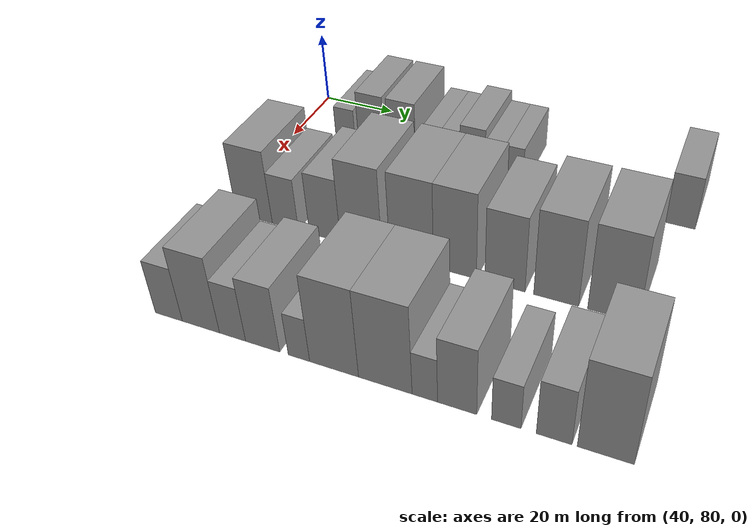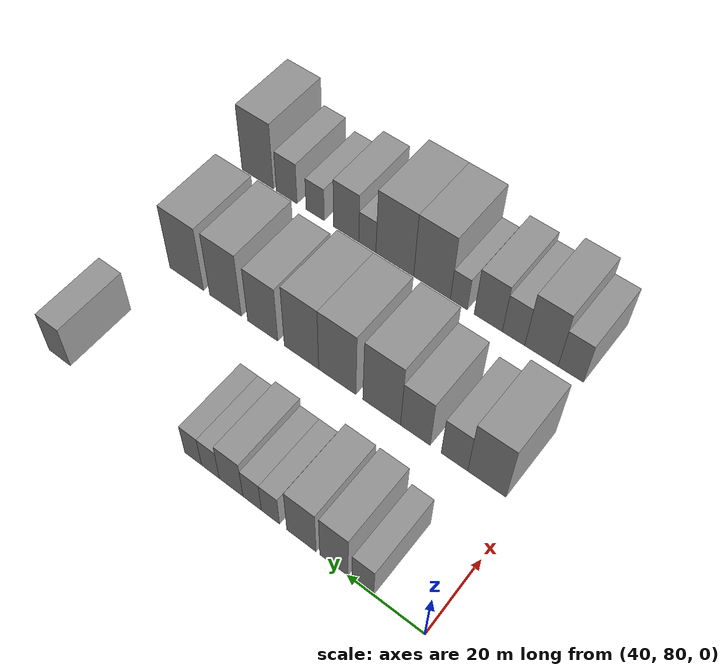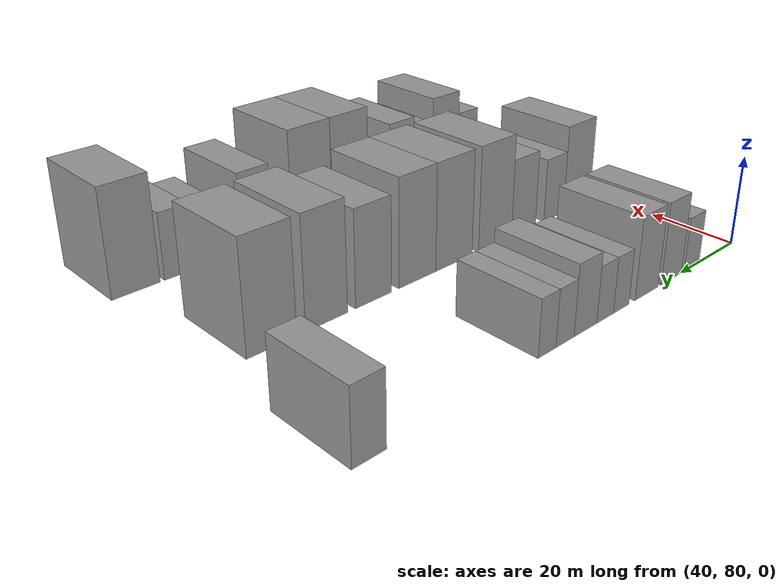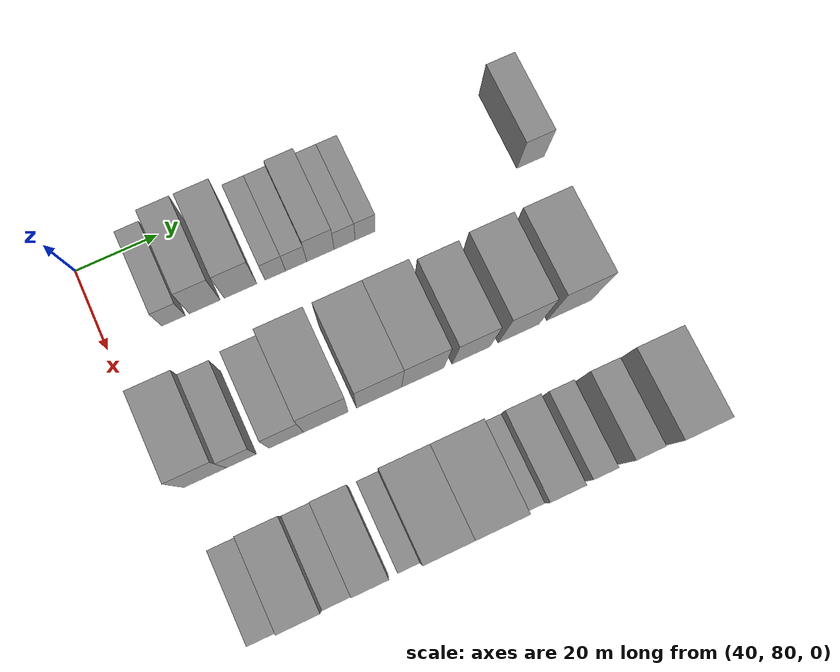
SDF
<sdf version="1.6">
 <world name="default">
  <model name="building_48">
   <static>1</static>
   <pose>50.0000 95.8957 0 0.000000 0.000000 0.000000</pose>
   <link name="link">
    <pose>0 0 6.00 0 0 0</pose>
    <collision name="collision"><geometry><box><size>20.0000 5.6661 12.0000</size></box></geometry></collision>
    <visual name="visual">
     <cast_shadows>0</cast_shadows>
     <geometry><box><size>20.0000 5.6661 12.0000</size></box></geometry>
     <material>
      <script>
       <uri>model://grey_wall/materials/scripts</uri>
       <uri>model://grey_wall/materials/textures</uri>
       <name>vrc/grey_wall</name>
      </script>
     </material>
    </visual>
   </link>
  </model>
  <model name="building_49">
   <static>1</static>
   <pose>50.0000 103.4634 0 0.000000 0.000000 0.000000</pose>
   <link name="link">
    <pose>0 0 9.00 0 0 0</pose>
    <collision name="collision"><geometry><box><size>20.0000 7.4692 18.0000</size></box></geometry></collision>
    <visual name="visual">
     <cast_shadows>0</cast_shadows>
     <geometry><box><size>20.0000 7.4692 18.0000</size></box></geometry>
     <material>
      <script>
       <uri>model://grey_wall/materials/scripts</uri>
       <uri>model://grey_wall/materials/textures</uri>
       <name>vrc/grey_wall</name>
      </script>
     </material>
    </visual>
   </link>
  </model>
  <model name="building_50">
   <static>1</static>
   <pose>50.0000 112.1897 0 0.000000 0.000000 0.000000</pose>
   <link name="link">
    <pose>0 0 9.00 0 0 0</pose>
    <collision name="collision"><geometry><box><size>20.0000 7.9834 18.0000</size></box></geometry></collision>
    <visual name="visual">
     <cast_shadows>0</cast_shadows>
     <geometry><box><size>20.0000 7.9834 18.0000</size></box></geometry>
     <material>
      <script>
       <uri>model://grey_wall/materials/scripts</uri>
       <uri>model://grey_wall/materials/textures</uri>
       <name>vrc/grey_wall</name>
      </script>
     </material>
    </visual>
   </link>
  </model>
  <model name="building_51">
   <static>1</static>
   <pose>50.0000 120.7090 0 0.000000 0.000000 0.000000</pose>
   <link name="link">
    <pose>0 0 6.00 0 0 0</pose>
    <collision name="collision"><geometry><box><size>20.0000 5.0552 12.0000</size></box></geometry></collision>
    <visual name="visual">
     <cast_shadows>0</cast_shadows>
     <geometry><box><size>20.0000 5.0552 12.0000</size></box></geometry>
     <material>
      <script>
       <uri>model://grey_wall/materials/scripts</uri>
       <uri>model://grey_wall/materials/textures</uri>
       <name>vrc/grey_wall</name>
      </script>
     </material>
    </visual>
   </link>
  </model>
  <model name="building_52">
   <static>1</static>
   <pose>50.0000 125.8475 0 0.000000 0.000000 0.000000</pose>
   <link name="link">
    <pose>0 0 6.00 0 0 0</pose>
    <collision name="collision"><geometry><box><size>20.0000 5.2218 12.0000</size></box></geometry></collision>
    <visual name="visual">
     <cast_shadows>0</cast_shadows>
     <geometry><box><size>20.0000 5.2218 12.0000</size></box></geometry>
     <material>
      <script>
       <uri>model://grey_wall/materials/scripts</uri>
       <uri>model://grey_wall/materials/textures</uri>
       <name>vrc/grey_wall</name>
      </script>
     </material>
    </visual>
   </link>
  </model>
  <model name="building_53">
   <static>1</static>
   <pose>50.0000 131.8721 0 0.000000 0.000000 0.000000</pose>
   <link name="link">
    <pose>0 0 7.50 0 0 0</pose>
    <collision name="collision"><geometry><box><size>20.0000 6.8275 15.0000</size></box></geometry></collision>
    <visual name="visual">
     <cast_shadows>0</cast_shadows>
     <geometry><box><size>20.0000 6.8275 15.0000</size></box></geometry>
     <material>
      <script>
       <uri>model://grey_wall/materials/scripts</uri>
       <uri>model://grey_wall/materials/textures</uri>
       <name>vrc/grey_wall</name>
      </script>
     </material>
    </visual>
   </link>
  </model>
  <model name="building_54">
   <static>1</static>
   <pose>50.0000 137.8904 0 0.000000 0.000000 0.000000</pose>
   <link name="link">
    <pose>0 0 6.00 0 0 0</pose>
    <collision name="collision"><geometry><box><size>20.0000 5.2091 12.0000</size></box></geometry></collision>
    <visual name="visual">
     <cast_shadows>0</cast_shadows>
     <geometry><box><size>20.0000 5.2091 12.0000</size></box></geometry>
     <material>
      <script>
       <uri>model://grey_wall/materials/scripts</uri>
       <uri>model://grey_wall/materials/textures</uri>
       <name>vrc/grey_wall</name>
      </script>
     </material>
    </visual>
   </link>
  </model>
  <model name="building_55">
   <static>1</static>
   <pose>50.0000 142.9968 0 0.000000 0.000000 0.000000</pose>
   <link name="link">
    <pose>0 0 6.00 0 0 0</pose>
    <collision name="collision"><geometry><box><size>20.0000 5.0038 12.0000</size></box></geometry></collision>
    <visual name="visual">
     <cast_shadows>0</cast_shadows>
     <geometry><box><size>20.0000 5.0038 12.0000</size></box></geometry>
     <material>
      <script>
       <uri>model://grey_wall/materials/scripts</uri>
       <uri>model://grey_wall/materials/textures</uri>
       <name>vrc/grey_wall</name>
      </script>
     </material>
    </visual>
   </link>
  </model>
  <model name="building_56">
   <static>1</static>
   <pose>50.0000 185.0853 0 0.000000 0.000000 0.000000</pose>
   <link name="link">
    <pose>0 0 7.50 0 0 0</pose>
    <collision name="collision"><geometry><box><size>20.0000 7.0578 15.0000</size></box></geometry></collision>
    <visual name="visual">
     <cast_shadows>0</cast_shadows>
     <geometry><box><size>20.0000 7.0578 15.0000</size></box></geometry>
     <material>
      <script>
       <uri>model://grey_wall/materials/scripts</uri>
       <uri>model://grey_wall/materials/textures</uri>
       <name>vrc/grey_wall</name>
      </script>
     </material>
    </visual>
   </link>
  </model>
  <model name="building_126">
   <static>1</static>
   <pose>85.0000 88.8570 0 0.000000 0.000000 0.000000</pose>
   <link name="link">
    <pose>0 0 10.50 0 0 0</pose>
    <collision name="collision"><geometry><box><size>20.0000 10.0114 21.0000</size></box></geometry></collision>
    <visual name="visual">
     <cast_shadows>0</cast_shadows>
     <geometry><box><size>20.0000 10.0114 21.0000</size></box></geometry>
     <material>
      <script>
       <uri>model://grey_wall/materials/scripts</uri>
       <uri>model://grey_wall/materials/textures</uri>
       <name>vrc/grey_wall</name>
      </script>
     </material>
    </visual>
   </link>
  </model>
  <model name="building_127">
   <static>1</static>
   <pose>85.0000 97.4110 0 0.000000 0.000000 0.000000</pose>
   <link name="link">
    <pose>0 0 7.50 0 0 0</pose>
    <collision name="collision"><geometry><box><size>20.0000 7.0967 15.0000</size></box></geometry></collision>
    <visual name="visual">
     <cast_shadows>0</cast_shadows>
     <geometry><box><size>20.0000 7.0967 15.0000</size></box></geometry>
     <material>
      <script>
       <uri>model://grey_wall/materials/scripts</uri>
       <uri>model://grey_wall/materials/textures</uri>
       <name>vrc/grey_wall</name>
      </script>
     </material>
    </visual>
   </link>
  </model>
  <model name="building_128">
   <static>1</static>
   <pose>85.0000 108.0596 0 0.000000 0.000000 0.000000</pose>
   <link name="link">
    <pose>0 0 9.00 0 0 0</pose>
    <collision name="collision"><geometry><box><size>20.0000 8.2004 18.0000</size></box></geometry></collision>
    <visual name="visual">
     <cast_shadows>0</cast_shadows>
     <geometry><box><size>20.0000 8.2004 18.0000</size></box></geometry>
     <material>
      <script>
       <uri>model://grey_wall/materials/scripts</uri>
       <uri>model://grey_wall/materials/textures</uri>
       <name>vrc/grey_wall</name>
      </script>
     </material>
    </visual>
   </link>
  </model>
  <model name="building_129">
   <static>1</static>
   <pose>85.0000 117.5058 0 0.000000 0.000000 0.000000</pose>
   <link name="link">
    <pose>0 0 12.00 0 0 0</pose>
    <collision name="collision"><geometry><box><size>20.0000 10.6919 24.0000</size></box></geometry></collision>
    <visual name="visual">
     <cast_shadows>0</cast_shadows>
     <geometry><box><size>20.0000 10.6919 24.0000</size></box></geometry>
     <material>
      <script>
       <uri>model://grey_wall/materials/scripts</uri>
       <uri>model://grey_wall/materials/textures</uri>
       <name>vrc/grey_wall</name>
      </script>
     </material>
    </visual>
   </link>
  </model>
  <model name="building_130">
   <static>1</static>
   <pose>85.0000 130.2972 0 0.000000 0.000000 0.000000</pose>
   <link name="link">
    <pose>0 0 12.00 0 0 0</pose>
    <collision name="collision"><geometry><box><size>20.0000 10.8909 24.0000</size></box></geometry></collision>
    <visual name="visual">
     <cast_shadows>0</cast_shadows>
     <geometry><box><size>20.0000 10.8909 24.0000</size></box></geometry>
     <material>
      <script>
       <uri>model://grey_wall/materials/scripts</uri>
       <uri>model://grey_wall/materials/textures</uri>
       <name>vrc/grey_wall</name>
      </script>
     </material>
    </visual>
   </link>
  </model>
  <model name="building_131">
   <static>1</static>
   <pose>85.0000 140.9189 0 0.000000 0.000000 0.000000</pose>
   <link name="link">
    <pose>0 0 12.00 0 0 0</pose>
    <collision name="collision"><geometry><box><size>20.0000 10.3524 24.0000</size></box></geometry></collision>
    <visual name="visual">
     <cast_shadows>0</cast_shadows>
     <geometry><box><size>20.0000 10.3524 24.0000</size></box></geometry>
     <material>
      <script>
       <uri>model://grey_wall/materials/scripts</uri>
       <uri>model://grey_wall/materials/textures</uri>
       <name>vrc/grey_wall</name>
      </script>
     </material>
    </visual>
   </link>
  </model>
  <model name="building_132">
   <static>1</static>
   <pose>85.0000 152.7845 0 0.000000 0.000000 0.000000</pose>
   <link name="link">
    <pose>0 0 10.50 0 0 0</pose>
    <collision name="collision"><geometry><box><size>20.0000 9.3790 21.0000</size></box></geometry></collision>
    <visual name="visual">
     <cast_shadows>0</cast_shadows>
     <geometry><box><size>20.0000 9.3790 21.0000</size></box></geometry>
     <material>
      <script>
       <uri>model://grey_wall/materials/scripts</uri>
       <uri>model://grey_wall/materials/textures</uri>
       <name>vrc/grey_wall</name>
      </script>
     </material>
    </visual>
   </link>
  </model>
  <model name="building_133">
   <static>1</static>
   <pose>85.0000 164.5537 0 0.000000 0.000000 0.000000</pose>
   <link name="link">
    <pose>0 0 12.00 0 0 0</pose>
    <collision name="collision"><geometry><box><size>20.0000 10.1594 24.0000</size></box></geometry></collision>
    <visual name="visual">
     <cast_shadows>0</cast_shadows>
     <geometry><box><size>20.0000 10.1594 24.0000</size></box></geometry>
     <material>
      <script>
       <uri>model://grey_wall/materials/scripts</uri>
       <uri>model://grey_wall/materials/textures</uri>
       <name>vrc/grey_wall</name>
      </script>
     </material>
    </visual>
   </link>
  </model>
  <model name="building_134">
   <static>1</static>
   <pose>85.0000 177.1973 0 0.000000 0.000000 0.000000</pose>
   <link name="link">
    <pose>0 0 12.00 0 0 0</pose>
    <collision name="collision"><geometry><box><size>20.0000 11.1279 24.0000</size></box></geometry></collision>
    <visual name="visual">
     <cast_shadows>0</cast_shadows>
     <geometry><box><size>20.0000 11.1279 24.0000</size></box></geometry>
     <material>
      <script>
       <uri>model://grey_wall/materials/scripts</uri>
       <uri>model://grey_wall/materials/textures</uri>
       <name>vrc/grey_wall</name>
      </script>
     </material>
    </visual>
   </link>
  </model>
  <model name="building_206">
   <static>1</static>
   <pose>120.0000 89.1711 0 0.000000 0.000000 0.000000</pose>
   <link name="link">
    <pose>0 0 7.50 0 0 0</pose>
    <collision name="collision"><geometry><box><size>20.0000 6.8389 15.0000</size></box></geometry></collision>
    <visual name="visual">
     <cast_shadows>0</cast_shadows>
     <geometry><box><size>20.0000 6.8389 15.0000</size></box></geometry>
     <material>
      <script>
       <uri>model://grey_wall/materials/scripts</uri>
       <uri>model://grey_wall/materials/textures</uri>
       <name>vrc/grey_wall</name>
      </script>
     </material>
    </visual>
   </link>
  </model>
  <model name="building_207">
   <static>1</static>
   <pose>120.0000 97.2006 0 0.000000 0.000000 0.000000</pose>
   <link name="link">
    <pose>0 0 10.50 0 0 0</pose>
    <collision name="collision"><geometry><box><size>20.0000 9.2201 21.0000</size></box></geometry></collision>
    <visual name="visual">
     <cast_shadows>0</cast_shadows>
     <geometry><box><size>20.0000 9.2201 21.0000</size></box></geometry>
     <material>
      <script>
       <uri>model://grey_wall/materials/scripts</uri>
       <uri>model://grey_wall/materials/textures</uri>
       <name>vrc/grey_wall</name>
      </script>
     </material>
    </visual>
   </link>
  </model>
  <model name="building_208">
   <static>1</static>
   <pose>120.0000 104.9711 0 0.000000 0.000000 0.000000</pose>
   <link name="link">
    <pose>0 0 7.50 0 0 0</pose>
    <collision name="collision"><geometry><box><size>20.0000 6.3209 15.0000</size></box></geometry></collision>
    <visual name="visual">
     <cast_shadows>0</cast_shadows>
     <geometry><box><size>20.0000 6.3209 15.0000</size></box></geometry>
     <material>
      <script>
       <uri>model://grey_wall/materials/scripts</uri>
       <uri>model://grey_wall/materials/textures</uri>
       <name>vrc/grey_wall</name>
      </script>
     </material>
    </visual>
   </link>
  </model>
  <model name="building_209">
   <static>1</static>
   <pose>120.0000 112.1640 0 0.000000 0.000000 0.000000</pose>
   <link name="link">
    <pose>0 0 9.00 0 0 0</pose>
    <collision name="collision"><geometry><box><size>20.0000 8.0649 18.0000</size></box></geometry></collision>
    <visual name="visual">
     <cast_shadows>0</cast_shadows>
     <geometry><box><size>20.0000 8.0649 18.0000</size></box></geometry>
     <material>
      <script>
       <uri>model://grey_wall/materials/scripts</uri>
       <uri>model://grey_wall/materials/textures</uri>
       <name>vrc/grey_wall</name>
      </script>
     </material>
    </visual>
   </link>
  </model>
  <model name="building_210">
   <static>1</static>
   <pose>120.0000 120.6647 0 0.000000 0.000000 0.000000</pose>
   <link name="link">
    <pose>0 0 6.00 0 0 0</pose>
    <collision name="collision"><geometry><box><size>20.0000 4.9365 12.0000</size></box></geometry></collision>
    <visual name="visual">
     <cast_shadows>0</cast_shadows>
     <geometry><box><size>20.0000 4.9365 12.0000</size></box></geometry>
     <material>
      <script>
       <uri>model://grey_wall/materials/scripts</uri>
       <uri>model://grey_wall/materials/textures</uri>
       <name>vrc/grey_wall</name>
      </script>
     </material>
    </visual>
   </link>
  </model>
  <model name="building_211">
   <static>1</static>
   <pose>120.0000 128.6336 0 0.000000 0.000000 0.000000</pose>
   <link name="link">
    <pose>0 0 12.00 0 0 0</pose>
    <collision name="collision"><geometry><box><size>20.0000 11.0012 24.0000</size></box></geometry></collision>
    <visual name="visual">
     <cast_shadows>0</cast_shadows>
     <geometry><box><size>20.0000 11.0012 24.0000</size></box></geometry>
     <material>
      <script>
       <uri>model://grey_wall/materials/scripts</uri>
       <uri>model://grey_wall/materials/textures</uri>
       <name>vrc/grey_wall</name>
      </script>
     </material>
    </visual>
   </link>
  </model>
  <model name="building_212">
   <static>1</static>
   <pose>120.0000 139.9476 0 0.000000 0.000000 0.000000</pose>
   <link name="link">
    <pose>0 0 12.00 0 0 0</pose>
    <collision name="collision"><geometry><box><size>20.0000 11.6268 24.0000</size></box></geometry></collision>
    <visual name="visual">
     <cast_shadows>0</cast_shadows>
     <geometry><box><size>20.0000 11.6268 24.0000</size></box></geometry>
     <material>
      <script>
       <uri>model://grey_wall/materials/scripts</uri>
       <uri>model://grey_wall/materials/textures</uri>
       <name>vrc/grey_wall</name>
      </script>
     </material>
    </visual>
   </link>
  </model>
  <model name="building_213">
   <static>1</static>
   <pose>120.0000 148.4471 0 0.000000 0.000000 0.000000</pose>
   <link name="link">
    <pose>0 0 6.00 0 0 0</pose>
    <collision name="collision"><geometry><box><size>20.0000 5.3722 12.0000</size></box></geometry></collision>
    <visual name="visual">
     <cast_shadows>0</cast_shadows>
     <geometry><box><size>20.0000 5.3722 12.0000</size></box></geometry>
     <material>
      <script>
       <uri>model://grey_wall/materials/scripts</uri>
       <uri>model://grey_wall/materials/textures</uri>
       <name>vrc/grey_wall</name>
      </script>
     </material>
    </visual>
   </link>
  </model>
  <model name="building_214">
   <static>1</static>
   <pose>120.0000 155.1764 0 0.000000 0.000000 0.000000</pose>
   <link name="link">
    <pose>0 0 9.00 0 0 0</pose>
    <collision name="collision"><geometry><box><size>20.0000 8.0864 18.0000</size></box></geometry></collision>
    <visual name="visual">
     <cast_shadows>0</cast_shadows>
     <geometry><box><size>20.0000 8.0864 18.0000</size></box></geometry>
     <material>
      <script>
       <uri>model://grey_wall/materials/scripts</uri>
       <uri>model://grey_wall/materials/textures</uri>
       <name>vrc/grey_wall</name>
      </script>
     </material>
    </visual>
   </link>
  </model>
  <model name="building_215">
   <static>1</static>
   <pose>120.0000 165.1686 0 0.000000 0.000000 0.000000</pose>
   <link name="link">
    <pose>0 0 6.00 0 0 0</pose>
    <collision name="collision"><geometry><box><size>20.0000 5.8981 12.0000</size></box></geometry></collision>
    <visual name="visual">
     <cast_shadows>0</cast_shadows>
     <geometry><box><size>20.0000 5.8981 12.0000</size></box></geometry>
     <material>
      <script>
       <uri>model://grey_wall/materials/scripts</uri>
       <uri>model://grey_wall/materials/textures</uri>
       <name>vrc/grey_wall</name>
      </script>
     </material>
    </visual>
   </link>
  </model>
  <model name="building_216">
   <static>1</static>
   <pose>120.0000 174.5731 0 0.000000 0.000000 0.000000</pose>
   <link name="link">
    <pose>0 0 7.50 0 0 0</pose>
    <collision name="collision"><geometry><box><size>20.0000 6.9109 15.0000</size></box></geometry></collision>
    <visual name="visual">
     <cast_shadows>0</cast_shadows>
     <geometry><box><size>20.0000 6.9109 15.0000</size></box></geometry>
     <material>
      <script>
       <uri>model://grey_wall/materials/scripts</uri>
       <uri>model://grey_wall/materials/textures</uri>
       <name>vrc/grey_wall</name>
      </script>
     </material>
    </visual>
   </link>
  </model>
  <model name="building_217">
   <static>1</static>
   <pose>120.0000 184.3866 0 0.000000 0.000000 0.000000</pose>
   <link name="link">
    <pose>0 0 12.00 0 0 0</pose>
    <collision name="collision"><geometry><box><size>20.0000 10.7163 24.0000</size></box></geometry></collision>
    <visual name="visual">
     <cast_shadows>0</cast_shadows>
     <geometry><box><size>20.0000 10.7163 24.0000</size></box></geometry>
     <material>
      <script>
       <uri>model://grey_wall/materials/scripts</uri>
       <uri>model://grey_wall/materials/textures</uri>
       <name>vrc/grey_wall</name>
      </script>
     </material>
    </visual>
   </link>
  </model>
 </world>
</sdf>
